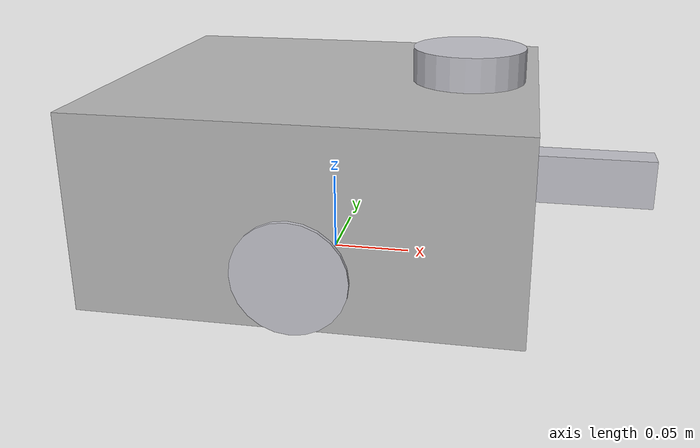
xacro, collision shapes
<?xml version="1.0" ?>
<robot name="ired" xmlns:xacro="http://www.ros.org/wiki/xacro">

  <xacro:arg name="lidar_noise_stddev" default="0.01" />

  <xacro:include filename="$(find ired_simulation)/urdf/materials.xacro" />
  <xacro:include filename="$(find ired_simulation)/urdf/ired.gazebo" />

  <link name="base_footprint"/>
  <link name="imu_link"/>

  <link name="base_link">
    <inertial>
      <origin rpy="0 0 0" xyz="0 0 0"/>
      <mass value="1.0"/>
      <inertia ixx="0.00568" ixy="0.0" ixz="0.0" iyy="0.00683" iyz="0.0" izz="0.01012"/>
    </inertial>
    <visual>
      <origin rpy="1.57079632679 1.57079632679 3.14159265359" xyz="0.035 0.04 0"/>
      <geometry>
        <mesh filename="file://$(find ired_simulation)/meshes/ired.stl" scale="0.001 0.001 0.001"/>
      </geometry>
      <material name="silver"/>
    </visual>
    <collision>
      <origin rpy="0.0 0.0 0.0" xyz="0.0 0.0 -0.019"/>
      <geometry>
        <box size="0.260 0.232 0.11966"/>
      </geometry>
    </collision>
  </link>

  <link name="wheel_right_link">
    <inertial>
      <origin rpy="0 0 0" xyz="0 0 0"/>
      <mass value="0.1"/>
      <inertia ixx="3.41e-05" ixy="0.0" ixz="0.0" iyy="3.41e-05" iyz="0.0" izz="5.78e-05"/>
    </inertial>
    <collision>
      <origin rpy="0.0 0.0 0.0" xyz="0.0 0.0 0.0"/>
      <geometry>
        <cylinder radius="0.034" length="0.025"/>
      </geometry>
    </collision>
  </link>
  <link name="wheel_left_link">
    <inertial>
      <origin rpy="0 0 0" xyz="0 0 0"/>
      <mass value="0.1"/>
      <inertia ixx="3.41e-05" ixy="0.0" ixz="0.0" iyy="3.41e-05" iyz="0.0" izz="5.78e-05"/>
    </inertial>
    <collision>
      <origin rpy="0.0 0.0 0.0" xyz="0.0 0.0 0.0"/>
      <geometry>
        <cylinder radius="0.034" length="0.025"/>
      </geometry>
    </collision>
  </link>

  <link name="base_scan">
    <inertial>
      <origin xyz="0 0 0"/>
      <mass value="0.114"/>
      <inertia ixx="0.001" ixy="0.0" ixz="0.0" iyy="0.001" iyz="0.0" izz="0.001"/>
    </inertial>
    <collision>
      <origin rpy="0.0 0.0 0.0" xyz="0.0 0.0 0.0"/>
      <geometry>
        <cylinder length="0.0315" radius="0.035"/>
      </geometry>
    </collision>
  </link>

  <link name="base_camera">
    <inertial>
      <origin xyz="0 0 0"/>
      <mass value="0.1"/>
      <inertia ixx="0.000011" ixy="0.0" ixz="0.0" iyy="0.000107" iyz="0.0" izz="0.000102"/>
    </inertial>
    <collision>
      <origin rpy="0.0 0.0 0.0" xyz="0.0 0.0 -0.01"/>
      <geometry>
        <box size="0.109 0.019 0.031"/>
      </geometry>
    </collision>
  </link>

  <joint name="base_joint" type="fixed">
    <parent link="base_footprint"/>
    <child link="base_link"/>
    <origin rpy="0.0 0.0 0.0" xyz="0.0 0.0 0.079"/>
  </joint>
  <joint name="wheel_right_joint" type="continuous">
    <parent link="base_link"/>
    <child link="wheel_right_link"/>
    <axis xyz="0 0 1"/>
    <origin rpy="-1.57079632679 0.0 0.0" xyz="0.0 -0.106 -0.047"/>
  </joint>
  <joint name="wheel_left_joint" type="continuous">
    <parent link="base_link"/>
    <child link="wheel_left_link"/>
    <axis xyz="0 0 1"/>
    <origin rpy="-1.57079632679 0.0 0.0" xyz="0.0 0.106 -0.047"/>
  </joint>
  <joint name="scan_joint" type="fixed">
    <parent link="base_link"/>
    <child link="base_scan"/>
    <origin rpy="0.0 0.0 3.14159265359" xyz="0.087 0.0 0.046"/>
  </joint>
  <joint name="imu_joint" type="fixed">
    <parent link="base_link"/>
    <child link="imu_link"/>
    <origin rpy="0.0 0.0 0.0" xyz="-0.075 -0.05 0.016"/>
  </joint>
  <joint name="camera_joint" type="fixed">
    <parent link="base_link"/>
    <child link="base_camera"/>
    <origin rpy="0.0 0.0 0.0" xyz="0.15 0.0 -0.009"/>
  </joint>

</robot>

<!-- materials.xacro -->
<robot name="ired" xmlns:xacro="http://www.ros.org/wiki/xacro" >

<material name="silver">
  <color rgba="0.700 0.700 0.700 1.000"/>
</material>

</robot>

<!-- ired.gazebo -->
<robot name="ired" xmlns:xacro="http://www.ros.org/wiki/xacro" >

<xacro:property name="body_color" value="Gazebo/Silver" />

<gazebo>
  <plugin filename="gz-sim-diff-drive-system" name="gz::sim::systems::DiffDrive">
    <left_joint>wheel_left_joint</left_joint>
    <right_joint>wheel_right_joint</right_joint>
    <wheel_separation>0.212</wheel_separation>
    <wheel_radius>0.034</wheel_radius>
    <topic>/cmd_vel</topic>
    <odom_topic>/odom</odom_topic>
    <tf_topic>/tf</tf_topic>
    <frame_id>odom</frame_id>
    <child_frame_id>base_footprint</child_frame_id>
    <odom_publish_frequency>50</odom_publish_frequency>
    <max_linear_velocity>0.55</max_linear_velocity>
    <min_linear_velocity>-0.55</min_linear_velocity>
    <max_angular_velocity>2.0</max_angular_velocity>
    <min_angular_velocity>-2.0</min_angular_velocity>
  </plugin>

  <plugin filename="gz-sim-joint-state-publisher-system" name="gz::sim::systems::JointStatePublisher">
    <topic>/joint_states</topic>
    <joint_name>wheel_left_joint</joint_name>
    <joint_name>wheel_right_joint</joint_name>
  </plugin>

  <!-- Ground truth: stream the model pose (base_footprint) in world as the robot moves -->
  <plugin filename="gz-sim-pose-publisher-system" name="gz::sim::systems::PosePublisher">
    <publish_model_pose>true</publish_model_pose>
    <publish_link_pose>false</publish_link_pose>
    <publish_collision_pose>false</publish_collision_pose>
    <publish_visual_pose>false</publish_visual_pose>
    <publish_sensor_pose>false</publish_sensor_pose>
    <publish_nested_model_pose>false</publish_nested_model_pose>
    <use_pose_vector_msg>true</use_pose_vector_msg>
    <update_frequency>50</update_frequency>
  </plugin>
</gazebo>

<gazebo reference="base_link">
  <material>${body_color}</material>
  <mu1>0.2</mu1>
  <mu2>0.2</mu2>
  <self_collide>true</self_collide>
  <gravity>true</gravity>
  <sensor name="imu_sensor" type="imu">
    <always_on>true</always_on>
    <update_rate>100</update_rate>
    <topic>/ired/imu/data</topic>
    <gz_frame_id>imu_link</gz_frame_id>
  </sensor>
</gazebo>

<gazebo reference="wheel_right_link">
  <material>${body_color}</material>
  <mu1>0.2</mu1>
  <mu2>0.2</mu2>
  <self_collide>true</self_collide>
</gazebo>

<gazebo reference="wheel_left_link">
  <material>${body_color}</material>
  <mu1>0.2</mu1>
  <mu2>0.2</mu2>
  <self_collide>true</self_collide>
</gazebo>

<gazebo reference="base_scan">
  <material>${body_color}</material>
  <mu1>0.2</mu1>
  <mu2>0.2</mu2>
  <self_collide>true</self_collide>
  <sensor name="rplidar_a1" type="gpu_lidar">
    <always_on>true</always_on>
    <visualize>true</visualize>
    <update_rate>6.631730725236648</update_rate>
    <topic>/scan</topic>
    <gz_frame_id>base_scan</gz_frame_id>
    <lidar>
      <scan>
        <horizontal>
          <samples>720</samples>
          <resolution>1.0</resolution>
          <min_angle>-3.1241390705108643</min_angle>
          <max_angle>3.1415927410125732</max_angle>
        </horizontal>
      </scan>
      <range>
        <min>0.15</min>
        <max>12.0</max>
        <resolution>0.01</resolution>
      </range>
      <noise>
        <type>gaussian</type>
        <mean>0.0</mean>
        <stddev>$(arg lidar_noise_stddev)</stddev>
      </noise>
    </lidar>
  </sensor>
</gazebo>

<gazebo reference="base_camera">
  <material>${body_color}</material>
  <mu1>0.2</mu1>
  <mu2>0.2</mu2>
  <self_collide>true</self_collide>
</gazebo>

</robot>
